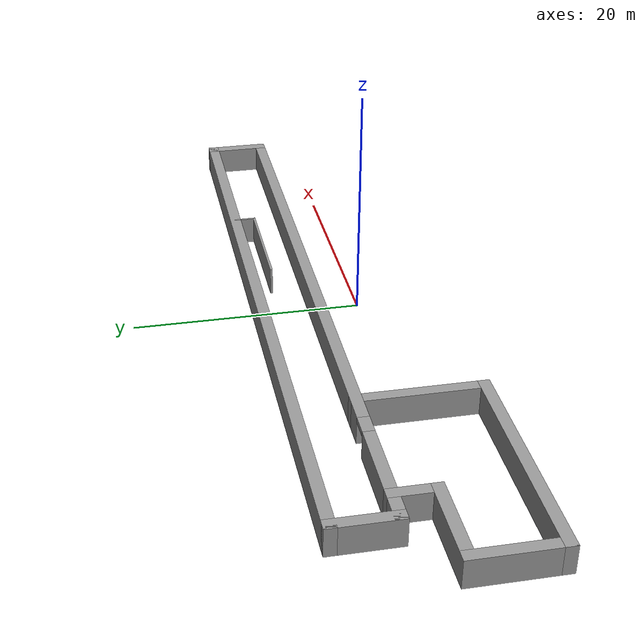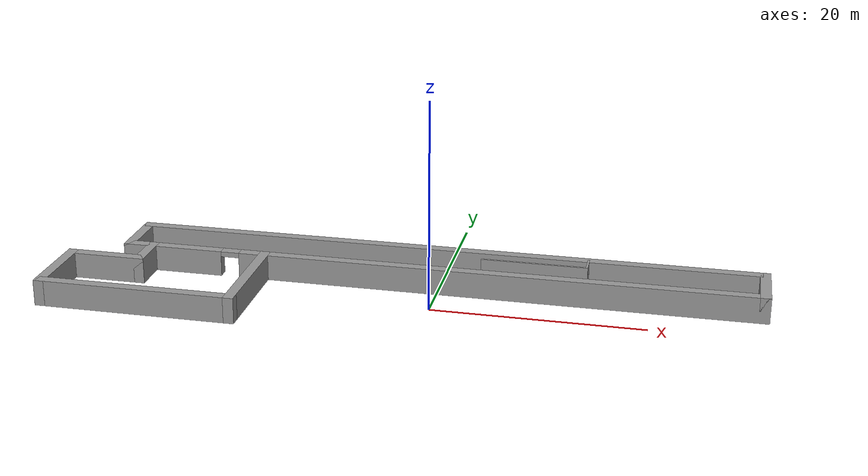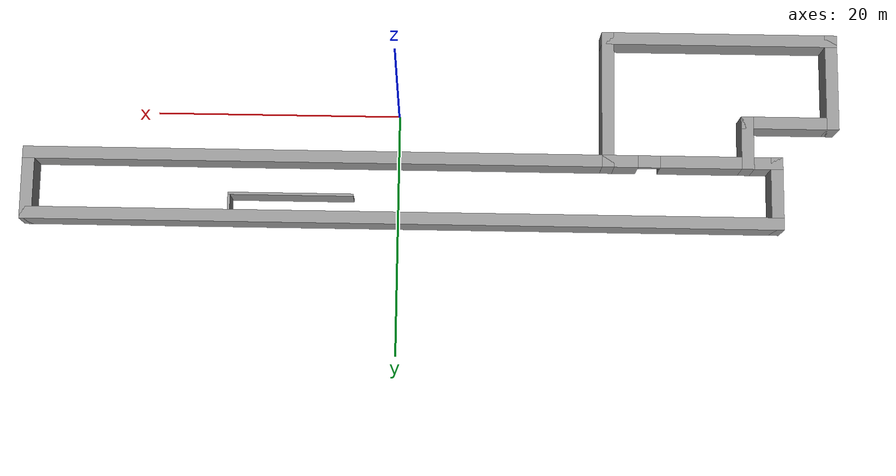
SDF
<?xml version='1.0'?>
<sdf version='1.6'>
  <model name='school_2xscale'>
    <pose frame=''>-2.661 1.32239 0 0 -0 0</pose>
    <link name='Wall_0'>
      <collision name='Wall_0_Collision'>
        <geometry>
          <box>
            <size>62 1 2.5</size>
          </box>
        </geometry>
        <pose frame=''>0 0 1.25 0 -0 0</pose>
      </collision>
      <visual name='Wall_0_Visual'>
        <pose frame=''>0 0 1.25 0 -0 0</pose>
        <geometry>
          <box>
            <size>62 1 2.5</size>
          </box>
        </geometry>
        <material>
          <script>
            <uri>file://media/materials/scripts/gazebo.material</uri>
            <name>Gazebo/Grey</name>
          </script>
          <ambient>1 1 1 1</ambient>
        </material>
        <meta>
          <layer>0</layer>
        </meta>
      </visual>
      <pose frame=''>2.327 7.69961 0 0 -0 0</pose>
    </link>
    <link name='Wall_13'>
      <collision name='Wall_13_Collision'>
        <geometry>
          <box>
            <size>19.4 1 2.5</size>
          </box>
        </geometry>
        <pose frame=''>0 0 1.25 0 -0 0</pose>
      </collision>
      <visual name='Wall_13_Visual'>
        <pose frame=''>0 0 1.25 0 -0 0</pose>
        <geometry>
          <box>
            <size>19.4 1 2.5</size>
          </box>
        </geometry>
        <material>
          <script>
            <uri>file://media/materials/scripts/gazebo.material</uri>
            <name>Gazebo/Grey</name>
          </script>
          <ambient>1 1 1 1</ambient>
        </material>
        <meta>
          <layer>0</layer>
        </meta>
      </visual>
      <pose frame=''>-23.627 -7.69939 0 0 -0 3.14159</pose>
    </link>
    <link name='Wall_15'>
      <collision name='Wall_15_Collision'>
        <geometry>
          <box>
            <size>8 1 2.5</size>
          </box>
        </geometry>
        <pose frame=''>0 0 1.25 0 -0 0</pose>
      </collision>
      <visual name='Wall_15_Visual'>
        <pose frame=''>0 0 1.25 0 -0 0</pose>
        <geometry>
          <box>
            <size>8 1 2.5</size>
          </box>
        </geometry>
        <material>
          <script>
            <uri>file://media/materials/scripts/gazebo.material</uri>
            <name>Gazebo/Grey</name>
          </script>
          <ambient>1 1 1 1</ambient>
        </material>
        <meta>
          <layer>0</layer>
        </meta>
      </visual>
      <pose frame=''>-32.827 -4.19939 0 0 -0 1.5708</pose>
    </link>
    <link name='Wall_17'>
      <collision name='Wall_17_Collision'>
        <geometry>
          <box>
            <size>8 1 2.5</size>
          </box>
        </geometry>
        <pose frame=''>0 0 1.25 0 -0 0</pose>
      </collision>
      <visual name='Wall_17_Visual'>
        <pose frame=''>0 0 1.25 0 -0 0</pose>
        <geometry>
          <box>
            <size>8 1 2.5</size>
          </box>
        </geometry>
        <material>
          <script>
            <uri>file://media/materials/scripts/gazebo.material</uri>
            <name>Gazebo/Grey</name>
          </script>
          <ambient>1 1 1 1</ambient>
        </material>
        <meta>
          <layer>0</layer>
        </meta>
      </visual>
      <pose frame=''>-29.327 -0.699387 0 0 -0 0</pose>
    </link>
    <link name='Wall_19'>
      <collision name='Wall_19_Collision'>
        <geometry>
          <box>
            <size>4.4 1 2.5</size>
          </box>
        </geometry>
        <pose frame=''>0 0 1.25 0 -0 0</pose>
      </collision>
      <visual name='Wall_19_Visual'>
        <pose frame=''>0 0 1.25 0 -0 0</pose>
        <geometry>
          <box>
            <size>4.4 1 2.5</size>
          </box>
        </geometry>
        <material>
          <script>
            <uri>file://media/materials/scripts/gazebo.material</uri>
            <name>Gazebo/Grey</name>
          </script>
          <ambient>1 1 1 1</ambient>
        </material>
        <meta>
          <layer>0</layer>
        </meta>
      </visual>
      <pose frame=''>-25.827 1.00061 0 0 -0 1.5708</pose>
    </link>
    <link name='Wall_2'>
      <collision name='Wall_2_Collision'>
        <geometry>
          <box>
            <size>6 1 2.5</size>
          </box>
        </geometry>
        <pose frame=''>0 0 1.25 0 -0 0</pose>
      </collision>
      <visual name='Wall_2_Visual'>
        <pose frame=''>0 0 1.25 0 -0 0</pose>
        <geometry>
          <box>
            <size>6 1 2.5</size>
          </box>
        </geometry>
        <material>
          <script>
            <uri>file://media/materials/scripts/gazebo.material</uri>
            <name>Gazebo/Grey</name>
          </script>
          <ambient>1 1 1 1</ambient>
        </material>
        <meta>
          <layer>0</layer>
        </meta>
      </visual>
      <pose frame=''>-28.173 5.19961 0 0 0 -1.5708</pose>
    </link>
    <link name='Wall_21'>
      <collision name='Wall_21_Collision'>
        <geometry>
          <box>
            <size>2 0.2 2.5</size>
          </box>
        </geometry>
        <pose frame=''>0 0 1.25 0 -0 0</pose>
      </collision>
      <visual name='Wall_21_Visual'>
        <pose frame=''>0 0 1.25 0 -0 0</pose>
        <geometry>
          <box>
            <size>2 0.2 2.5</size>
          </box>
        </geometry>
        <material>
          <script>
            <uri>file://media/materials/scripts/gazebo.material</uri>
            <name>Gazebo/Grey</name>
          </script>
          <ambient>1 1 1 1</ambient>
        </material>
        <meta>
          <layer>0</layer>
        </meta>
      </visual>
      <pose frame=''>16.3748 6.76966 0 0 0 -1.57056</pose>
    </link>
    <link name='Wall_23'>
      <collision name='Wall_23_Collision'>
        <geometry>
          <box>
            <size>10.2 0.2 2.5</size>
          </box>
        </geometry>
        <pose frame=''>0 0 1.25 0 -0 0</pose>
      </collision>
      <visual name='Wall_23_Visual'>
        <pose frame=''>0 0 1.25 0 -0 0</pose>
        <geometry>
          <box>
            <size>10.2 0.2 2.5</size>
          </box>
        </geometry>
        <material>
          <script>
            <uri>file://media/materials/scripts/gazebo.material</uri>
            <name>Gazebo/Grey</name>
          </script>
          <ambient>1 1 1 1</ambient>
        </material>
        <meta>
          <layer>0</layer>
        </meta>
      </visual>
      <pose frame=''>11.375 5.86961 0 0 -0 3.14159</pose>
    </link>
    <link name='Wall_4'>
      <pose frame=''>2.327 2.69961 0 0 -0 0</pose>
      <visual name='Wall_4_Visual_0'>
        <pose frame=''>-26 0 1.25 0 -0 0</pose>
        <geometry>
          <box>
            <size>10 1 2.5</size>
          </box>
        </geometry>
        <material>
          <script>
            <uri>file://media/materials/scripts/gazebo.material</uri>
            <name>Gazebo/Grey</name>
          </script>
          <ambient>1 1 1 1</ambient>
        </material>
        <meta>
          <layer>0</layer>
        </meta>
      </visual>
      <collision name='Wall_4_Collision_0'>
        <geometry>
          <box>
            <size>10 1 2.5</size>
          </box>
        </geometry>
        <pose frame=''>-26 0 1.25 0 -0 0</pose>
      </collision>
      <visual name='Wall_4_Visual_1'>
        <pose frame=''>5.9 0 1.25 0 -0 0</pose>
        <geometry>
          <box>
            <size>50.2 1 2.5</size>
          </box>
        </geometry>
        <material>
          <script>
            <uri>file://media/materials/scripts/gazebo.material</uri>
            <name>Gazebo/Grey</name>
          </script>
          <ambient>1 1 1 1</ambient>
        </material>
        <meta>
          <layer>0</layer>
        </meta>
      </visual>
      <collision name='Wall_4_Collision_1'>
        <geometry>
          <box>
            <size>50.2 1 2.5</size>
          </box>
        </geometry>
        <pose frame=''>5.9 0 1.25 0 -0 0</pose>
      </collision>
      <visual name='Wall_4_Visual_2'>
        <pose frame=''>-20.1 0 2.25 0 -0 0</pose>
        <geometry>
          <box>
            <size>1.8 1 0.5</size>
          </box>
        </geometry>
        <material>
          <script>
            <uri>file://media/materials/scripts/gazebo.material</uri>
            <name>Gazebo/Grey</name>
          </script>
          <ambient>1 1 1 1</ambient>
        </material>
        <meta>
          <layer>0</layer>
        </meta>
      </visual>
      <collision name='Wall_4_Collision_2'>
        <geometry>
          <box>
            <size>1.8 1 0.5</size>
          </box>
        </geometry>
        <pose frame=''>-20.1 0 2.25 0 -0 0</pose>
      </collision>
    </link>
    <link name='Wall_6'>
      <collision name='Wall_6_Collision'>
        <geometry>
          <box>
            <size>6 1 2.5</size>
          </box>
        </geometry>
        <pose frame=''>0 0 1.25 0 -0 0</pose>
      </collision>
      <visual name='Wall_6_Visual'>
        <pose frame=''>0 0 1.25 0 -0 0</pose>
        <geometry>
          <box>
            <size>6 1 2.5</size>
          </box>
        </geometry>
        <material>
          <script>
            <uri>file://media/materials/scripts/gazebo.material</uri>
            <name>Gazebo/Grey</name>
          </script>
          <ambient>1 1 1 1</ambient>
        </material>
        <meta>
          <layer>0</layer>
        </meta>
      </visual>
      <pose frame=''>32.827 5.19961 0 0 -0 1.5708</pose>
    </link>
    <link name='Wall_9'>
      <collision name='Wall_9_Collision'>
        <geometry>
          <box>
            <size>11.4 1 2.5</size>
          </box>
        </geometry>
        <pose frame=''>0 0 1.25 0 -0 0</pose>
      </collision>
      <visual name='Wall_9_Visual'>
        <pose frame=''>0 0 1.25 0 -0 0</pose>
        <geometry>
          <box>
            <size>11.4 1 2.5</size>
          </box>
        </geometry>
        <material>
          <script>
            <uri>file://media/materials/scripts/gazebo.material</uri>
            <name>Gazebo/Grey</name>
          </script>
          <ambient>1 1 1 1</ambient>
        </material>
        <meta>
          <layer>0</layer>
        </meta>
      </visual>
      <pose frame=''>-14.427 -2.49961 0 0 0 -1.5708</pose>
    </link>
    <static>1</static>
  </model>
</sdf>
